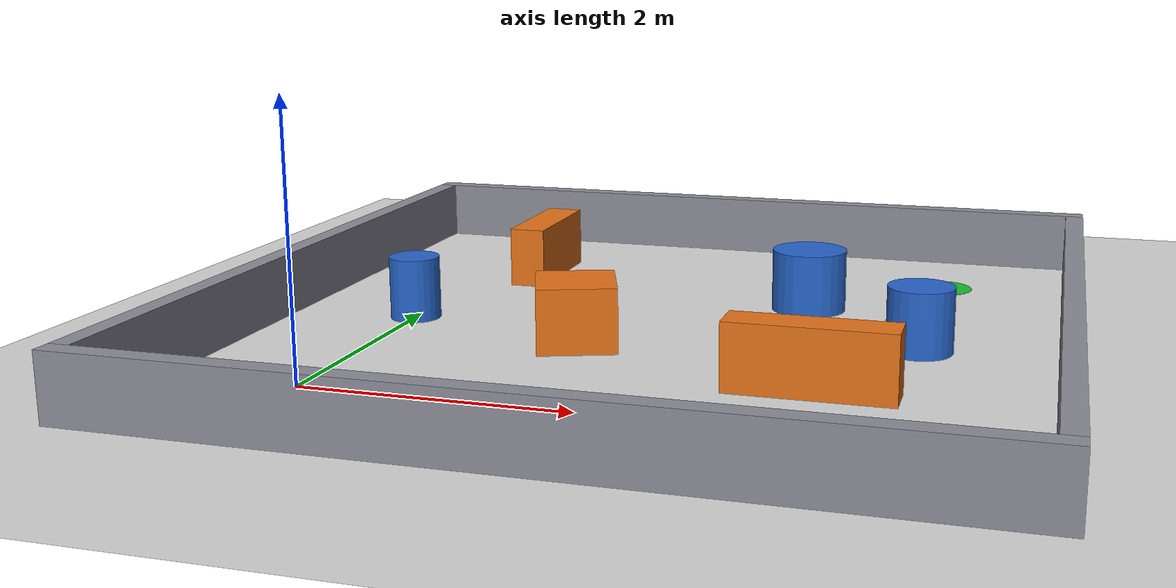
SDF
<?xml version="1.0"?>
<sdf version="1.6">
  <world name="senaryo1">

    <physics type="ode">
      <real_time_update_rate>1000.0</real_time_update_rate>
      <max_step_size>0.001</max_step_size>
      <real_time_factor>1</real_time_factor>
      <ode>
        <solver>
          <type>quick</type>
          <iters>150</iters>
          <precon_iters>0</precon_iters>
          <sor>1.400000</sor>
          <use_dynamic_moi_rescaling>1</use_dynamic_moi_rescaling>
        </solver>
        <constraints>
          <cfm>0.00001</cfm>
          <erp>0.2</erp>
          <contact_max_correcting_vel>2000.000000</contact_max_correcting_vel>
          <contact_surface_layer>0.01000</contact_surface_layer>
        </constraints>
      </ode>
    </physics>

    <scene>
      <ambient>0.4 0.4 0.4 1</ambient>
      <background>0.7 0.7 0.7 1</background>
      <shadows>false</shadows>
    </scene>

    <gui fullscreen="0">
      <camera name="user_camera">
        <pose>2.0 -2.6 6.2 0 0.9 1.5708</pose>
        <view_controller>orbit</view_controller>
        <projection_type>perspective</projection_type>
      </camera>
    </gui>

    <light name="sun" type="directional">
      <cast_shadows>false</cast_shadows>
      <pose>0 0 10 0 0 0</pose>
      <diffuse>0.8 0.8 0.8 1</diffuse>
      <specular>0.2 0.2 0.2 1</specular>
      <attenuation>
        <range>1000</range>
        <constant>0.9</constant>
        <linear>0.01</linear>
        <quadratic>0.001</quadratic>
      </attenuation>
      <direction>-0.5 0.1 -0.9</direction>
    </light>

    <model name="ground_plane">
      <static>true</static>
      <link name="link">
        <collision name="collision">
          <geometry>
            <plane><normal>0 0 1</normal><size>100 100</size></plane>
          </geometry>
          <surface>
            <friction><ode><mu>100</mu><mu2>50</mu2></ode></friction>
          </surface>
        </collision>
        <visual name="visual">
          <cast_shadows>false</cast_shadows>
          <geometry>
            <plane><normal>0 0 1</normal><size>100 100</size></plane>
          </geometry>
          <material>
            <ambient>0.85 0.85 0.85 1</ambient>
            <diffuse>0.85 0.85 0.85 1</diffuse>
          </material>
        </visual>
      </link>
    </model>

    <!-- Oda: iç yüzeyler x = -1, x = 5, y = -1, y = 5. Kalınlık 0.15 m, yükseklik 0.5 m. -->
    <model name="oda">
      <static>true</static>
      <link name="duvarlar">
        <collision name="guney_c">
          <pose>2.0 -1.075 0.25 0 0 0</pose>
          <geometry><box><size>6.3 0.15 0.5</size></box></geometry>
        </collision>
        <visual name="guney_v">
          <pose>2.0 -1.075 0.25 0 0 0</pose>
          <geometry><box><size>6.3 0.15 0.5</size></box></geometry>
          <material>
            <ambient>0.55 0.55 0.6 1</ambient>
            <diffuse>0.55 0.55 0.6 1</diffuse>
          </material>
        </visual>
        <collision name="kuzey_c">
          <pose>2.0 5.075 0.25 0 0 0</pose>
          <geometry><box><size>6.3 0.15 0.5</size></box></geometry>
        </collision>
        <visual name="kuzey_v">
          <pose>2.0 5.075 0.25 0 0 0</pose>
          <geometry><box><size>6.3 0.15 0.5</size></box></geometry>
          <material>
            <ambient>0.55 0.55 0.6 1</ambient>
            <diffuse>0.55 0.55 0.6 1</diffuse>
          </material>
        </visual>
        <collision name="bati_c">
          <pose>-1.075 2.0 0.25 0 0 0</pose>
          <geometry><box><size>0.15 6.0 0.5</size></box></geometry>
        </collision>
        <visual name="bati_v">
          <pose>-1.075 2.0 0.25 0 0 0</pose>
          <geometry><box><size>0.15 6.0 0.5</size></box></geometry>
          <material>
            <ambient>0.55 0.55 0.6 1</ambient>
            <diffuse>0.55 0.55 0.6 1</diffuse>
          </material>
        </visual>
        <collision name="dogu_c">
          <pose>5.075 2.0 0.25 0 0 0</pose>
          <geometry><box><size>0.15 6.0 0.5</size></box></geometry>
        </collision>
        <visual name="dogu_v">
          <pose>5.075 2.0 0.25 0 0 0</pose>
          <geometry><box><size>0.15 6.0 0.5</size></box></geometry>
          <material>
            <ambient>0.55 0.55 0.6 1</ambient>
            <diffuse>0.55 0.55 0.6 1</diffuse>
          </material>
        </visual>
      </link>
    </model>

    <!-- Statik engeller: kutular turuncu, silindirler mavi. -->
    <model name="kutu_1">
      <static>true</static>
      <pose>1.5 1.5 0.25 0 0 0.35</pose>
      <link name="link">
        <collision name="collision">
          <geometry><box><size>0.6 0.6 0.5</size></box></geometry>
        </collision>
        <visual name="visual">
          <geometry><box><size>0.6 0.6 0.5</size></box></geometry>
          <material>
            <ambient>0.9 0.45 0.1 1</ambient>
            <diffuse>0.9 0.45 0.1 1</diffuse>
          </material>
        </visual>
      </link>
    </model>

    <model name="kutu_2">
      <static>true</static>
      <pose>3.4 0.8 0.25 0 0 0</pose>
      <link name="link">
        <collision name="collision">
          <geometry><box><size>1.2 0.3 0.5</size></box></geometry>
        </collision>
        <visual name="visual">
          <geometry><box><size>1.2 0.3 0.5</size></box></geometry>
          <material>
            <ambient>0.9 0.45 0.1 1</ambient>
            <diffuse>0.9 0.45 0.1 1</diffuse>
          </material>
        </visual>
      </link>
    </model>

    <model name="kutu_3">
      <static>true</static>
      <pose>0.5 3.6 0.25 0 0 0</pose>
      <link name="link">
        <collision name="collision">
          <geometry><box><size>0.3 1.0 0.5</size></box></geometry>
        </collision>
        <visual name="visual">
          <geometry><box><size>0.3 1.0 0.5</size></box></geometry>
          <material>
            <ambient>0.9 0.45 0.1 1</ambient>
            <diffuse>0.9 0.45 0.1 1</diffuse>
          </material>
        </visual>
      </link>
    </model>

    <model name="silindir_1">
      <static>true</static>
      <pose>3.0 3.0 0.25 0 0 0</pose>
      <link name="link">
        <collision name="collision">
          <geometry><cylinder><radius>0.3</radius><length>0.5</length></cylinder></geometry>
        </collision>
        <visual name="visual">
          <geometry><cylinder><radius>0.3</radius><length>0.5</length></cylinder></geometry>
          <material>
            <ambient>0.15 0.4 0.8 1</ambient>
            <diffuse>0.15 0.4 0.8 1</diffuse>
          </material>
        </visual>
      </link>
    </model>

    <model name="silindir_2">
      <static>true</static>
      <pose>4.0 2.0 0.25 0 0 0</pose>
      <link name="link">
        <collision name="collision">
          <geometry><cylinder><radius>0.25</radius><length>0.5</length></cylinder></geometry>
        </collision>
        <visual name="visual">
          <geometry><cylinder><radius>0.25</radius><length>0.5</length></cylinder></geometry>
          <material>
            <ambient>0.15 0.4 0.8 1</ambient>
            <diffuse>0.15 0.4 0.8 1</diffuse>
          </material>
        </visual>
      </link>
    </model>

    <model name="silindir_3">
      <static>true</static>
      <pose>0.0 1.9 0.25 0 0 0</pose>
      <link name="link">
        <collision name="collision">
          <geometry><cylinder><radius>0.2</radius><length>0.5</length></cylinder></geometry>
        </collision>
        <visual name="visual">
          <geometry><cylinder><radius>0.2</radius><length>0.5</length></cylinder></geometry>
          <material>
            <ambient>0.15 0.4 0.8 1</ambient>
            <diffuse>0.15 0.4 0.8 1</diffuse>
          </material>
        </visual>
      </link>
    </model>

    <!-- Hedef bölgesi: yalnızca görsel (collision yok → LiDAR görmez, robot üstünden geçer). -->
    <model name="hedef">
      <static>true</static>
      <pose>4.0 4.0 0.002 0 0 0</pose>
      <link name="link">
        <visual name="visual">
          <geometry><cylinder><radius>0.25</radius><length>0.004</length></cylinder></geometry>
          <material>
            <ambient>0.1 0.75 0.2 1</ambient>
            <diffuse>0.1 0.75 0.2 1</diffuse>
          </material>
        </visual>
      </link>
    </model>

  </world>
</sdf>
